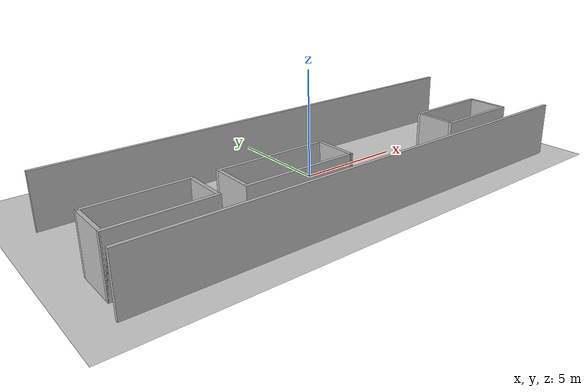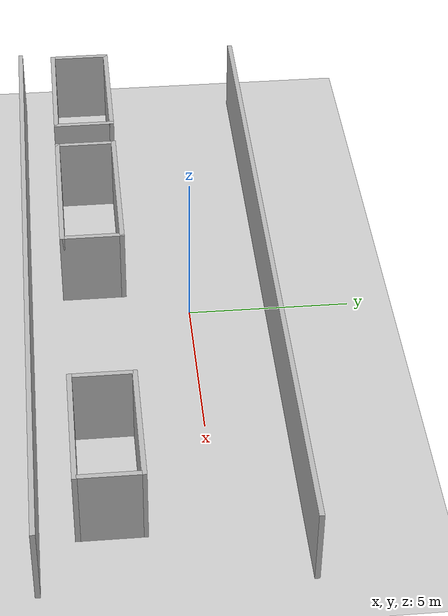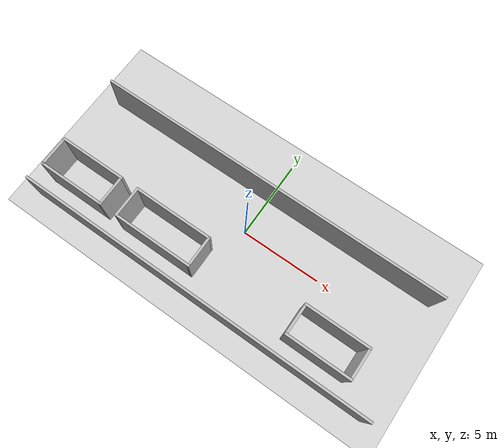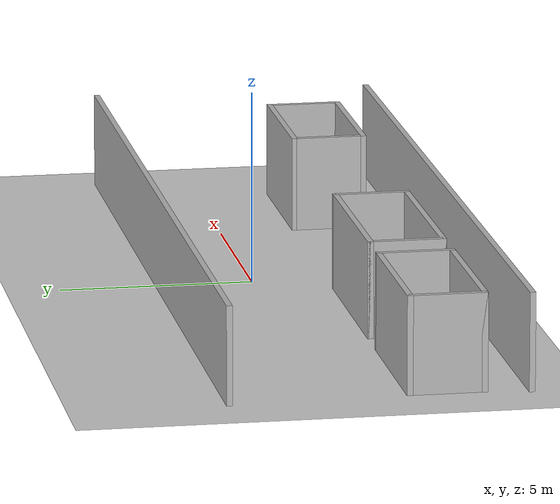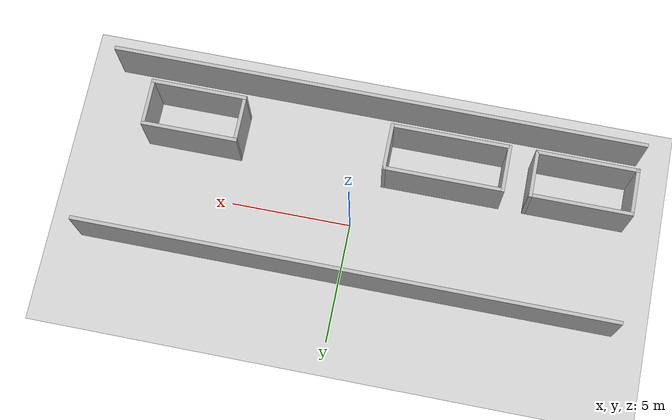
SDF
<sdf version='1.7'>
  <world name='default'>
    <light name='sun' type='directional'>
      <cast_shadows>1</cast_shadows>
      <pose>0 0 10 0 -0 0</pose>
      <diffuse>0.8 0.8 0.8 1</diffuse>
      <specular>0.2 0.2 0.2 1</specular>
      <attenuation>
        <range>1000</range>
        <constant>0.9</constant>
        <linear>0.01</linear>
        <quadratic>0.001</quadratic>
      </attenuation>
      <direction>-0.5 0.1 -0.9</direction>
    </light>

    <!-- Cámara inicial: vista cenital centrada sobre el aparcamiento -->
    <gui fullscreen='0'>
      <camera name='user_camera'>
        <pose>0 -3 30 0 1.5708 0</pose>
        <view_controller>orbit</view_controller>
      </camera>
    </gui>

    <model name='ground_plane'>
      <static>1</static>
      <link name='link'>
        <collision name='collision'>
          <geometry><plane><normal>0 0 1</normal><size>100 100</size></plane></geometry>
        </collision>
        <visual name='visual'>
          <cast_shadows>0</cast_shadows>
          <geometry><plane><normal>0 0 1</normal><size>100 100</size></plane></geometry>
          <material>
            <script><uri>file://media/materials/scripts/gazebo.material</uri><name>Gazebo/Grey</name></script>
          </material>
        </visual>
      </link>
    </model>

    <model name='model_prius_0'>
      <pose>-0.23593 -3.04914 0 0 -0 0</pose>
      <static>1</static>

      <!-- ═══ Pared trasera de toda la zona ═══════════════════════════════ -->
      <link name='Wall_17'>
        <pose>0 -1.93339 0 0 -0 0</pose>
        <collision name='collision'>
          <pose>0 0 1.25 0 -0 0</pose>
          <geometry><box><size>22.25 0.15 2.5</size></box></geometry>
        </collision>
        <visual name='visual'>
          <pose>0 0 1.25 0 -0 0</pose>
          <geometry><box><size>22.25 0.15 2.5</size></box></geometry>
        </visual>
      </link>

      <!-- ═══ Division carril contrario ═══════════════════════════════════ -->
      <link name='Wall_18'>
        <pose>0 5.5 0 0 -0 0</pose>
        <collision name='collision'>
          <pose>0 0 1.25 0 -0 0</pose>
          <geometry><box><size>22.25 0.15 2.5</size></box></geometry>
        </collision>
        <visual name='visual'>
          <pose>0 0 1.25 0 -0 0</pose>
          <geometry><box><size>22.25 0.15 2.5</size></box></geometry>
        </visual>
      </link>

      <!-- ═══ Coche Izquierda ══════════════════════════════════════════════ -->
      <link name='Wall_19'>
        <pose>-8.81898 -0.80112 0 0 -0 0</pose>
        <collision name='collision'>
          <pose>0 0 1.25 0 -0 0</pose>
          <geometry><box><size>4.25 0.15 2.5</size></box></geometry>
        </collision>
        <visual name='visual'>
          <pose>0 0 1.25 0 -0 0</pose>
          <geometry><box><size>4.25 0.15 2.5</size></box></geometry>
        </visual>
      </link>
      <link name='Wall_20'>
        <pose>-6.76898 0.12388 0 0 -0 1.5708</pose>
        <collision name='collision'>
          <pose>0 0 1.25 0 -0 0</pose>
          <geometry><box><size>2 0.15 2.5</size></box></geometry>
        </collision>
        <visual name='visual'>
          <pose>0 0 1.25 0 -0 0</pose>
          <geometry><box><size>2 0.15 2.5</size></box></geometry>
        </visual>
      </link>
      <link name='Wall_21'>
        <pose>-8.81898 1.04888 0 0 -0 3.14159</pose>
        <collision name='collision'>
          <pose>0 0 1.25 0 -0 0</pose>
          <geometry><box><size>4.25 0.15 2.5</size></box></geometry>
        </collision>
        <visual name='visual'>
          <pose>0 0 1.25 0 -0 0</pose>
          <geometry><box><size>4.25 0.15 2.5</size></box></geometry>
        </visual>
      </link>
      <link name='Wall_22'>
        <pose>-10.86897 0.12388 0 0 0 -1.5708</pose>
        <collision name='collision'>
          <pose>0 0 1.25 0 -0 0</pose>
          <geometry><box><size>2 0.15 2.5</size></box></geometry>
        </collision>
        <visual name='visual'>
          <pose>0 0 1.25 0 -0 0</pose>
          <geometry><box><size>2 0.15 2.5</size></box></geometry>
        </visual>
      </link>

      <!-- ═══ Coche Centro ════════════════════════════════════════════════ -->
      <link name='Wall_24'>
        <pose>-3.21445 -0.80112 0 0 -0 0</pose>
        <collision name='collision'>
          <pose>0 0 1.25 0 -0 0</pose>
          <geometry><box><size>5 0.15 2.5</size></box></geometry>
        </collision>
        <visual name='visual'>
          <pose>0 0 1.25 0 -0 0</pose>
          <geometry><box><size>5 0.15 2.5</size></box></geometry>
        </visual>
      </link>
      <link name='Wall_25'>
        <pose>-0.78945 0.12388 0 0 -0 1.5708</pose>
        <collision name='collision'>
          <pose>0 0 1.25 0 -0 0</pose>
          <geometry><box><size>2 0.15 2.5</size></box></geometry>
        </collision>
        <visual name='visual'>
          <pose>0 0 1.25 0 -0 0</pose>
          <geometry><box><size>2 0.15 2.5</size></box></geometry>
        </visual>
      </link>
      <link name='Wall_26'>
        <pose>-3.21445 1.04888 0 0 -0 3.14159</pose>
        <collision name='collision'>
          <pose>0 0 1.25 0 -0 0</pose>
          <geometry><box><size>5 0.15 2.5</size></box></geometry>
        </collision>
        <visual name='visual'>
          <pose>0 0 1.25 0 -0 0</pose>
          <geometry><box><size>5 0.15 2.5</size></box></geometry>
        </visual>
      </link>
      <link name='Wall_27'>
        <pose>-5.63945 0.12388 0 0 0 -1.5708</pose>
        <collision name='collision'>
          <pose>0 0 1.25 0 -0 0</pose>
          <geometry><box><size>2 0.15 2.5</size></box></geometry>
        </collision>
        <visual name='visual'>
          <pose>0 0 1.25 0 -0 0</pose>
          <geometry><box><size>2 0.15 2.5</size></box></geometry>
        </visual>
      </link>

      <link name='Wall_32'>
        <pose>5.36055 0.12388 0 0 -0 1.5708</pose>
        <collision name='collision'>
          <pose>0 0 1.25 0 -0 0</pose>
          <geometry><box><size>1.75 0.15 2.5</size></box></geometry>
        </collision>
        <visual name='visual'>
          <pose>0 0 1.25 0 -0 0</pose>
          <geometry><box><size>1.75 0.15 2.5</size></box></geometry>
        </visual>
      </link>
      <link name='Wall_33'>
        <pose>7.28555 1.04888 0 0 -0 0</pose>
        <collision name='collision'>
          <pose>0 0 1.25 0 -0 0</pose>
          <geometry><box><size>4 0.15 2.5</size></box></geometry>
        </collision>
        <visual name='visual'>
          <pose>0 0 1.25 0 -0 0</pose>
          <geometry><box><size>4 0.15 2.5</size></box></geometry>
        </visual>
      </link>
      <link name='Wall_34'>
        <pose>9.21055 0.12388 0 0 -0 -1.5708</pose>
        <collision name='collision'>
          <pose>0 0 1.25 0 -0 0</pose>
          <geometry><box><size>1.75 0.15 2.5</size></box></geometry>
        </collision>
        <visual name='visual'>
          <pose>0 0 1.25 0 -0 0</pose>
          <geometry><box><size>1.75 0.15 2.5</size></box></geometry>
        </visual>
      </link>
      <link name='Wall_35'>
        <pose>7.28555 -0.80112 0 0 -0 3.14159</pose>
        <collision name='collision'>
          <pose>0 0 1.25 0 -0 0</pose>
          <geometry><box><size>4 0.15 2.5</size></box></geometry>
        </collision>
        <visual name='visual'>
          <pose>0 0 1.25 0 -0 0</pose>
          <geometry><box><size>4 0.15 2.5</size></box></geometry>
        </visual>
      </link>

    </model>
  </world>
</sdf>
